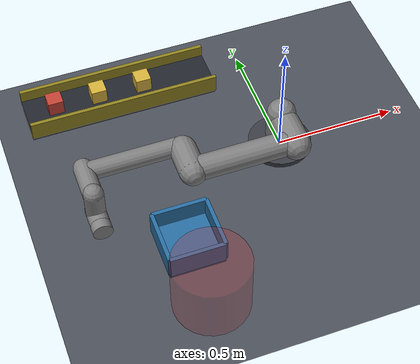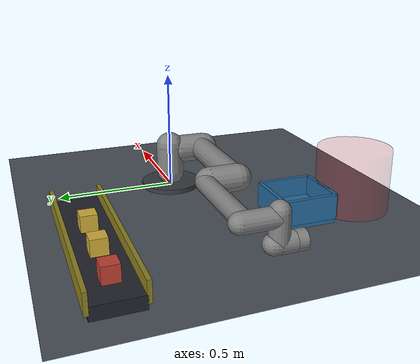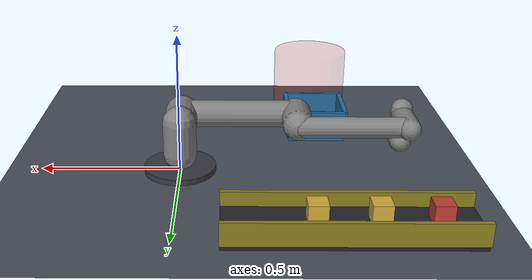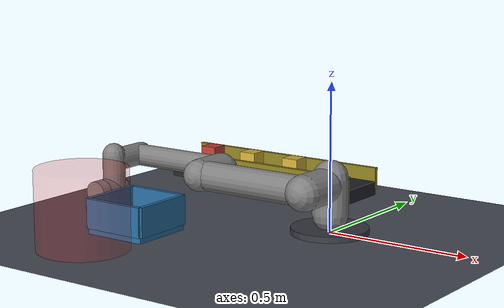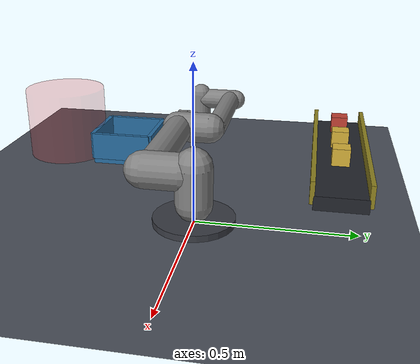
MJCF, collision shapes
<mujoco model="factory_cell_ur5e">
  <compiler angle="radian" meshdir="assets" autolimits="true"/>
  <option integrator="implicitfast"/>

  <include file="ur5e.xml"/>

  <visual>
    <global offwidth="960" offheight="720"/>
    <headlight diffuse="0.55 0.55 0.55" ambient="0.4 0.4 0.4" specular="0.1 0.1 0.1"/>
    <quality shadowsize="4096"/>
    <map force="0.1" zfar="30"/>
  </visual>

  <asset>
    <texture name="grid" type="2d" builtin="checker" rgb1="0.26 0.28 0.32" rgb2="0.31 0.33 0.37"
             width="300" height="300"/>
    <material name="floor_mat" texture="grid" texrepeat="6 6" reflectance="0.15"/>
    <material name="belt_mat" rgba="0.13 0.14 0.17 1"/>
    <material name="belt_rail" rgba="0.55 0.5 0.12 1"/>
    <material name="bin_mat" rgba="0.15 0.42 0.62 0.55"/>
    <material name="safety_mat" rgba="0.85 0.1 0.1 0.22"/>
    <material name="part_good" rgba="0.82 0.68 0.22 1"/>
    <material name="part_defect" rgba="0.75 0.25 0.2 1"/>
    <material name="pedestal_mat" rgba="0.22 0.23 0.26 1"/>
  </asset>

  <worldbody>
    <light name="key" pos="1.0 -1.0 2.4" dir="-0.4 0.4 -1" diffuse="0.7 0.7 0.7"/>
    <light name="fill" pos="-1.2 1.2 2.0" dir="0.4 -0.4 -1" diffuse="0.3 0.3 0.3"/>
    <camera name="cell" pos="1.75 -1.35 1.25" xyaxes="0.69 0.72 0 -0.36 0.34 0.87"/>
    <camera name="topdown" pos="-0.45 0.05 2.0" xyaxes="1 0 0 0 1 0"/>

    <geom name="floor" type="plane" size="4 4 0.1" material="floor_mat"/>

    <!-- robot mounting pedestal -->
    <geom name="pedestal" type="cylinder" pos="0 0 -0.001" size="0.13 0.02" material="pedestal_mat"/>

    <!-- conveyor belt (parts ride this toward the pick point) -->
    <geom name="belt" type="box" pos="-0.55 0.449 0.025" size="0.40 0.09 0.025" material="belt_mat"/>
    <geom name="belt_rail_n" type="box" pos="-0.55 0.355 0.06" size="0.40 0.008 0.04" material="belt_rail"/>
    <geom name="belt_rail_f" type="box" pos="-0.55 0.543 0.06" size="0.40 0.008 0.04" material="belt_rail"/>

    <!-- drop bin at the place point -->
    <geom name="bin_floor" type="box" pos="-0.52 -0.365 0.02" size="0.11 0.11 0.02" material="bin_mat"/>
    <geom name="bin_w1" type="box" pos="-0.52 -0.255 0.07" size="0.11 0.008 0.05" material="bin_mat"/>
    <geom name="bin_w2" type="box" pos="-0.52 -0.475 0.07" size="0.11 0.008 0.05" material="bin_mat"/>
    <geom name="bin_w3" type="box" pos="-0.41 -0.365 0.07" size="0.008 0.11 0.05" material="bin_mat"/>
    <geom name="bin_w4" type="box" pos="-0.63 -0.365 0.07" size="0.008 0.11 0.05" material="bin_mat"/>

    <!-- human safety keep-out zone (operator unloading the bin) -->
    <geom name="safety_zone" type="cylinder" pos="-0.52 -0.62 0.13" size="0.15 0.13" material="safety_mat" contype="0" conaffinity="0"/>
    <site name="safety_center" pos="-0.52 -0.62 0.13" size="0.02" rgba="0.9 0 0 0.7"/>

    <!-- parts on the belt: part2 is genuinely defective (different colour) -->
    <body name="part0" pos="-0.447 0.449 0.085">
      <freejoint name="part0_free"/>
      <geom name="part0_geom" type="box" size="0.032 0.032 0.032" material="part_good" mass="0.2" friction="1 0.05 0.001"/>
    </body>
    <body name="part1" pos="-0.640 0.449 0.085">
      <freejoint name="part1_free"/>
      <geom name="part1_geom" type="box" size="0.032 0.032 0.032" material="part_good" mass="0.2" friction="1 0.05 0.001"/>
    </body>
    <body name="part2" pos="-0.825 0.449 0.085">
      <freejoint name="part2_free"/>
      <geom name="part2_geom" type="box" size="0.032 0.032 0.032" material="part_defect" mass="0.2" friction="1 0.05 0.001"/>
    </body>
  </worldbody>
</mujoco>

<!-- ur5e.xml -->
<mujoco model="ur5e">
  <compiler angle="radian" meshdir="assets" autolimits="true"/>

  <option integrator="implicitfast"/>

  <default>
    <default class="ur5e">
      <material specular="0.5" shininess="0.25"/>
      <joint axis="0 1 0" range="-6.28319 6.28319" armature="0.1"/>
      <general gaintype="fixed" biastype="affine" ctrlrange="-6.2831 6.2831" gainprm="2000" biasprm="0 -2000 -400"
        forcerange="-150 150"/>
      <default class="size3">
        <default class="size3_limited">
          <joint range="-3.1415 3.1415"/>
          <general ctrlrange="-3.1415 3.1415"/>
        </default>
      </default>
      <default class="size1">
        <general gainprm="500" biasprm="0 -500 -100" forcerange="-28 28"/>
      </default>
      <default class="visual">
        <geom type="mesh" contype="0" conaffinity="0" group="2"/>
      </default>
      <default class="collision">
        <geom type="capsule" group="3"/>
        <default class="eef_collision">
          <geom type="cylinder"/>
        </default>
      </default>
      <site size="0.001" rgba="0.5 0.5 0.5 0.3" group="4"/>
    </default>
  </default>

  <asset>
    <material class="ur5e" name="black" rgba="0.033 0.033 0.033 1"/>
    <material class="ur5e" name="jointgray" rgba="0.278 0.278 0.278 1"/>
    <material class="ur5e" name="linkgray" rgba="0.82 0.82 0.82 1"/>
    <material class="ur5e" name="urblue" rgba="0.49 0.678 0.8 1"/>

    <mesh file="base_0.obj"/>
    <mesh file="base_1.obj"/>
    <mesh file="shoulder_0.obj"/>
    <mesh file="shoulder_1.obj"/>
    <mesh file="shoulder_2.obj"/>
    <mesh file="upperarm_0.obj"/>
    <mesh file="upperarm_1.obj"/>
    <mesh file="upperarm_2.obj"/>
    <mesh file="upperarm_3.obj"/>
    <mesh file="forearm_0.obj"/>
    <mesh file="forearm_1.obj"/>
    <mesh file="forearm_2.obj"/>
    <mesh file="forearm_3.obj"/>
    <mesh file="wrist1_0.obj"/>
    <mesh file="wrist1_1.obj"/>
    <mesh file="wrist1_2.obj"/>
    <mesh file="wrist2_0.obj"/>
    <mesh file="wrist2_1.obj"/>
    <mesh file="wrist2_2.obj"/>
    <mesh file="wrist3.obj"/>
  </asset>

  <worldbody>
    <body name="base" quat="0 0 0 -1" childclass="ur5e">
      <inertial mass="4.0" pos="0 0 0" diaginertia="0.00443333156 0.00443333156 0.0072"/>
      <geom mesh="base_0" material="black" class="visual"/>
      <geom mesh="base_1" material="jointgray" class="visual"/>
      <body name="shoulder_link" pos="0 0 0.163">
        <inertial mass="3.7" pos="0 0 0" diaginertia="0.0102675 0.0102675 0.00666"/>
        <joint name="shoulder_pan_joint" class="size3" axis="0 0 1"/>
        <geom mesh="shoulder_0" material="urblue" class="visual"/>
        <geom mesh="shoulder_1" material="black" class="visual"/>
        <geom mesh="shoulder_2" material="jointgray" class="visual"/>
        <geom class="collision" size="0.06 0.06" pos="0 0 -0.04"/>
        <body name="upper_arm_link" pos="0 0.138 0" quat="1 0 1 0">
          <inertial mass="8.393" pos="0 0 0.2125" diaginertia="0.133886 0.133886 0.0151074"/>
          <joint name="shoulder_lift_joint" class="size3"/>
          <geom mesh="upperarm_0" material="linkgray" class="visual"/>
          <geom mesh="upperarm_1" material="black" class="visual"/>
          <geom mesh="upperarm_2" material="jointgray" class="visual"/>
          <geom mesh="upperarm_3" material="urblue" class="visual"/>
          <geom class="collision" pos="0 -0.04 0" quat="1 1 0 0" size="0.06 0.06"/>
          <geom class="collision" size="0.05 0.2" pos="0 0 0.2"/>
          <body name="forearm_link" pos="0 -0.131 0.425">
            <inertial mass="2.275" pos="0 0 0.196" diaginertia="0.0311796 0.0311796 0.004095"/>
            <joint name="elbow_joint" class="size3_limited"/>
            <geom mesh="forearm_0" material="urblue" class="visual"/>
            <geom mesh="forearm_1" material="linkgray" class="visual"/>
            <geom mesh="forearm_2" material="black" class="visual"/>
            <geom mesh="forearm_3" material="jointgray" class="visual"/>
            <geom class="collision" pos="0 0.08 0" quat="1 1 0 0" size="0.055 0.06"/>
            <geom class="collision" size="0.038 0.19" pos="0 0 0.2"/>
            <body name="wrist_1_link" pos="0 0 0.392" quat="1 0 1 0">
              <inertial mass="1.219" pos="0 0.127 0" diaginertia="0.0025599 0.0025599 0.0021942"/>
              <joint name="wrist_1_joint" class="size1"/>
              <geom mesh="wrist1_0" material="black" class="visual"/>
              <geom mesh="wrist1_1" material="urblue" class="visual"/>
              <geom mesh="wrist1_2" material="jointgray" class="visual"/>
              <geom class="collision" pos="0 0.05 0" quat="1 1 0 0" size="0.04 0.07"/>
              <body name="wrist_2_link" pos="0 0.127 0">
                <inertial mass="1.219" pos="0 0 0.1" diaginertia="0.0025599 0.0025599 0.0021942"/>
                <joint name="wrist_2_joint" axis="0 0 1" class="size1"/>
                <geom mesh="wrist2_0" material="black" class="visual"/>
                <geom mesh="wrist2_1" material="urblue" class="visual"/>
                <geom mesh="wrist2_2" material="jointgray" class="visual"/>
                <geom class="collision" size="0.04 0.06" pos="0 0 0.04"/>
                <geom class="collision" pos="0 0.02 0.1" quat="1 1 0 0" size="0.04 0.04"/>
                <body name="wrist_3_link" pos="0 0 0.1">
                  <inertial mass="0.1889" pos="0 0.0771683 0" quat="1 0 0 1"
                    diaginertia="0.000132134 9.90863e-05 9.90863e-05"/>
                  <joint name="wrist_3_joint" class="size1"/>
                  <geom material="linkgray" mesh="wrist3" class="visual"/>
                  <geom class="eef_collision" pos="0 0.08 0" quat="1 1 0 0" size="0.04 0.02"/>
                  <site name="attachment_site" pos="0 0.1 0" quat="-1 1 0 0"/>
                </body>
              </body>
            </body>
          </body>
        </body>
      </body>
    </body>
  </worldbody>

  <actuator>
    <general class="size3" name="shoulder_pan" joint="shoulder_pan_joint"/>
    <general class="size3" name="shoulder_lift" joint="shoulder_lift_joint"/>
    <general class="size3_limited" name="elbow" joint="elbow_joint"/>
    <general class="size1" name="wrist_1" joint="wrist_1_joint"/>
    <general class="size1" name="wrist_2" joint="wrist_2_joint"/>
    <general class="size1" name="wrist_3" joint="wrist_3_joint"/>
  </actuator>

  <keyframe>
    <key name="home" qpos="-1.5708 -1.5708 1.5708 -1.5708 -1.5708 0" ctrl="-1.5708 -1.5708 1.5708 -1.5708 -1.5708 0"/>
  </keyframe>
</mujoco>
